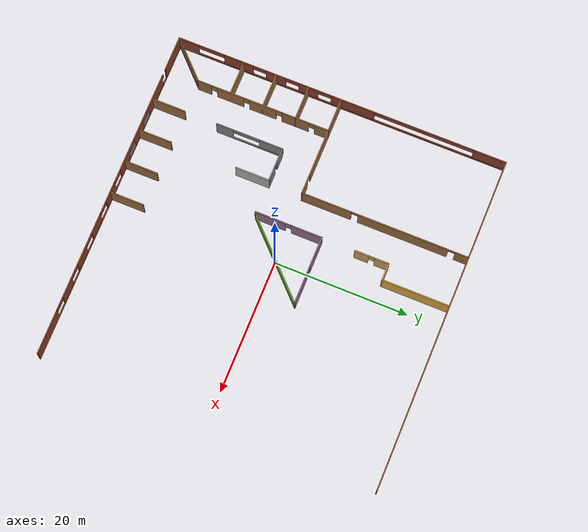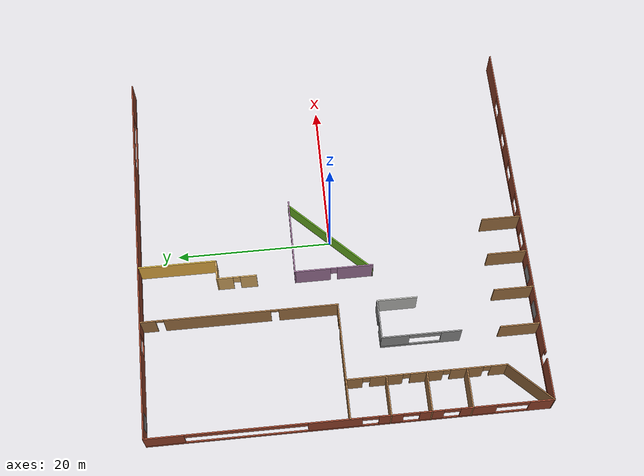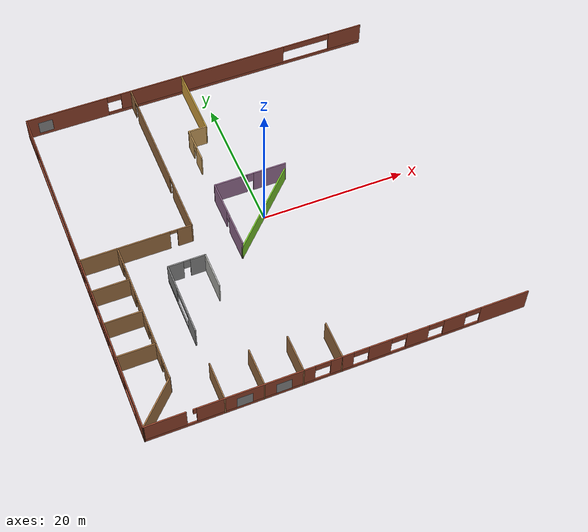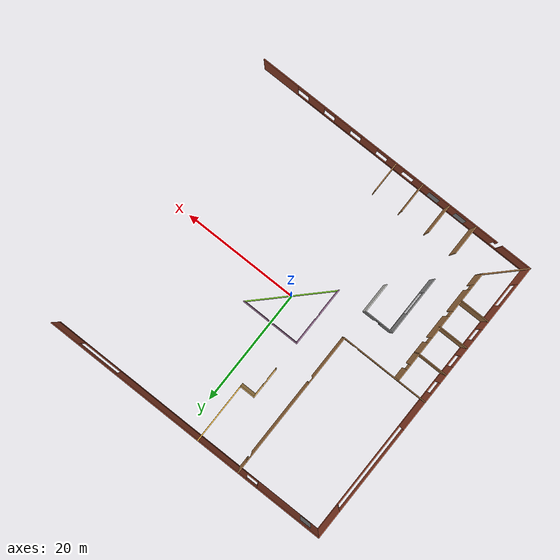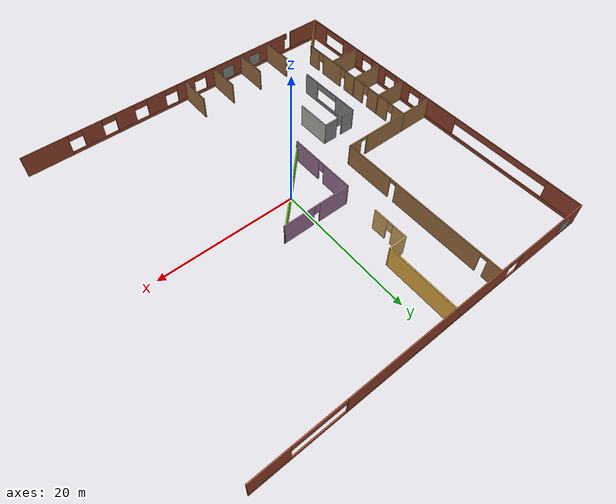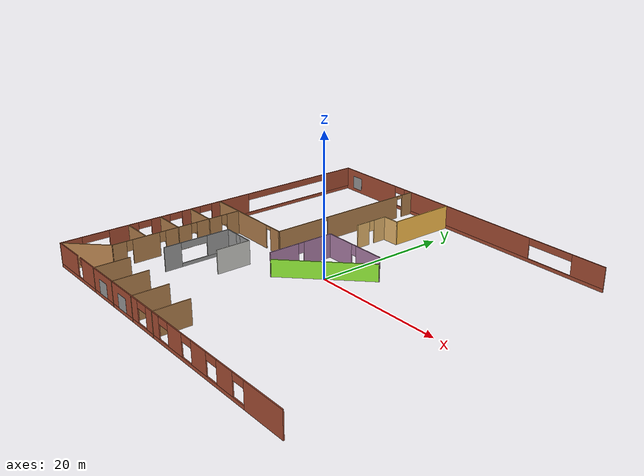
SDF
<sdf version="1.7">
 <model name="office__space">
  <pose>-0.015532 -0.015532 0 0 -0 0</pose>
  <link name="Wall_0">
   <pose>0.015532 25.0155 0 0 -0 0</pose>
   <visual name="Wall_0_Visual_0">
    <pose>-19.2875 0 1.75 0 -0 0</pose>
    <geometry><box><size>11.575 0.15 3.5</size></box></geometry>
    <material>
     <script><uri>file://media/materials/scripts/gazebo.material</uri><name>Gazebo/Bricks</name></script>
     <ambient>1 1 1 1</ambient>
    </material>
    <meta><layer>0</layer></meta>
   </visual>
   <collision name="Wall_0_Collision_0">
    <geometry><box><size>11.575 0.15 3.5</size></box></geometry>
    <pose>-19.2875 0 1.75 0 -0 0</pose>
   </collision>
   <visual name="Wall_0_Visual_1">
    <pose>5.7875 0 0.25 0 -0 0</pose>
    <geometry><box><size>38.575 0.15 0.5</size></box></geometry>
    <material>
     <script><uri>file://media/materials/scripts/gazebo.material</uri><name>Gazebo/Bricks</name></script>
     <ambient>1 1 1 1</ambient>
    </material>
    <meta><layer>0</layer></meta>
   </visual>
   <collision name="Wall_0_Collision_1">
    <geometry><box><size>38.575 0.15 0.5</size></box></geometry>
    <pose>5.7875 0 0.25 0 -0 0</pose>
   </collision>
   <visual name="Wall_0_Visual_2">
    <pose>0.75 0 2 0 -0 0</pose>
    <geometry><box><size>24.5 0.15 3</size></box></geometry>
    <material>
     <script><uri>file://media/materials/scripts/gazebo.material</uri><name>Gazebo/Bricks</name></script>
     <ambient>1 1 1 1</ambient>
    </material>
    <meta><layer>0</layer></meta>
   </visual>
   <collision name="Wall_0_Collision_2">
    <geometry><box><size>24.5 0.15 3</size></box></geometry>
    <pose>0.75 0 2 0 -0 0</pose>
   </collision>
   <visual name="Wall_0_Visual_3">
    <pose>22.5375 0 2 0 -0 0</pose>
    <geometry><box><size>5.075 0.15 3</size></box></geometry>
    <material>
     <script><uri>file://media/materials/scripts/gazebo.material</uri><name>Gazebo/Bricks</name></script>
     <ambient>1 1 1 1</ambient>
    </material>
    <meta><layer>0</layer></meta>
   </visual>
   <collision name="Wall_0_Collision_3">
    <geometry><box><size>5.075 0.15 3</size></box></geometry>
    <pose>22.5375 0 2 0 -0 0</pose>
   </collision>
   <visual name="Wall_0_Visual_4">
    <pose>-12.5 0 3 0 -0 0</pose>
    <geometry><box><size>2 0.15 1</size></box></geometry>
    <material>
     <script><uri>file://media/materials/scripts/gazebo.material</uri><name>Gazebo/Bricks</name></script>
     <ambient>1 1 1 1</ambient>
    </material>
    <meta><layer>0</layer></meta>
   </visual>
   <collision name="Wall_0_Collision_4">
    <geometry><box><size>2 0.15 1</size></box></geometry>
    <pose>-12.5 0 3 0 -0 0</pose>
   </collision>
   <visual name="Wall_0_Visual_5">
    <pose>16.5 0 3 0 -0 0</pose>
    <geometry><box><size>7 0.15 1</size></box></geometry>
    <material>
     <script><uri>file://media/materials/scripts/gazebo.material</uri><name>Gazebo/Bricks</name></script>
     <ambient>1 1 1 1</ambient>
    </material>
    <meta><layer>0</layer></meta>
   </visual>
   <collision name="Wall_0_Collision_5">
    <geometry><box><size>7 0.15 1</size></box></geometry>
    <pose>16.5 0 3 0 -0 0</pose>
   </collision>
  </link>
  <link name="Wall_12">
   <collision name="Wall_12_Collision">
    <geometry><box><size>5.15 0.15 3.5</size></box></geometry>
    <pose>0 0 1.75 0 -0 0</pose>
   </collision>
   <visual name="Wall_12_Visual">
    <pose>0 0 1.75 0 -0 0</pose>
    <geometry><box><size>5.15 0.15 3.5</size></box></geometry>
    <material>
     <script><uri>file://media/materials/scripts/gazebo.material</uri><name>Gazebo/Wood</name></script>
     <ambient>1 1 1 1</ambient>
    </material>
    <meta><layer>0</layer></meta>
   </visual>
   <pose>-22.4845 -4.98447 0 0 -0 0</pose>
  </link>
  <link name="Wall_14">
   <collision name="Wall_14_Collision">
    <geometry><box><size>5.15 0.15 3.5</size></box></geometry>
    <pose>0 0 1.75 0 -0 0</pose>
   </collision>
   <visual name="Wall_14_Visual">
    <pose>0 0 1.75 0 -0 0</pose>
    <geometry><box><size>5.15 0.15 3.5</size></box></geometry>
    <material>
     <script><uri>file://media/materials/scripts/gazebo.material</uri><name>Gazebo/Wood</name></script>
     <ambient>1 1 1 1</ambient>
    </material>
    <meta><layer>0</layer></meta>
   </visual>
   <pose>-22.4845 -9.98447 0 0 -0 0</pose>
  </link>
  <link name="Wall_16">
   <collision name="Wall_16_Collision">
    <geometry><box><size>5.15 0.15 3.5</size></box></geometry>
    <pose>0 0 1.75 0 -0 0</pose>
   </collision>
   <visual name="Wall_16_Visual">
    <pose>0 0 1.75 0 -0 0</pose>
    <geometry><box><size>5.15 0.15 3.5</size></box></geometry>
    <material>
     <script><uri>file://media/materials/scripts/gazebo.material</uri><name>Gazebo/Wood</name></script>
     <ambient>1 1 1 1</ambient>
    </material>
    <meta><layer>0</layer></meta>
   </visual>
   <pose>-22.4845 -14.9845 0 0 -0 0</pose>
  </link>
  <link name="Wall_19">
   <collision name="Wall_19_Collision">
    <geometry><box><size>7.22107 0.15 3.5</size></box></geometry>
    <pose>0 0 1.75 0 -0 0</pose>
   </collision>
   <visual name="Wall_19_Visual">
    <pose>0 0 1.75 0 -0 0</pose>
    <geometry><box><size>7.22107 0.15 3.5</size></box></geometry>
    <material>
     <script><uri>file://media/materials/scripts/gazebo.material</uri><name>Gazebo/Wood</name></script>
     <ambient>1 1 1 1</ambient>
    </material>
    <meta><layer>0</layer></meta>
   </visual>
   <pose>-22.4845 -22.4845 0 0 -0 -2.35619</pose>
  </link>
  <link name="Wall_2">
   <pose>0.015532 -24.9845 0 0 -0 3.14159</pose>
   <visual name="Wall_2_Visual_0">
    <pose>-21.7875 0 1.75 0 -0 0</pose>
    <geometry><box><size>6.575 0.15 3.5</size></box></geometry>
    <material>
     <script><uri>file://media/materials/scripts/gazebo.material</uri><name>Gazebo/Bricks</name></script>
     <ambient>1 1 1 1</ambient>
    </material>
    <meta><layer>0</layer></meta>
   </visual>
   <collision name="Wall_2_Collision_0">
    <geometry><box><size>6.575 0.15 3.5</size></box></geometry>
    <pose>-21.7875 0 1.75 0 -0 0</pose>
   </collision>
   <visual name="Wall_2_Visual_1">
    <pose>3.2875 0 0.25 0 -0 0</pose>
    <geometry><box><size>43.575 0.15 0.5</size></box></geometry>
    <material>
     <script><uri>file://media/materials/scripts/gazebo.material</uri><name>Gazebo/Bricks</name></script>
     <ambient>1 1 1 1</ambient>
    </material>
    <meta><layer>0</layer></meta>
   </visual>
   <collision name="Wall_2_Collision_1">
    <geometry><box><size>43.575 0.15 0.5</size></box></geometry>
    <pose>3.2875 0 0.25 0 -0 0</pose>
   </collision>
   <visual name="Wall_2_Visual_2">
    <pose>-15.0031 0 2 0 -0 0</pose>
    <geometry><box><size>2.99379 0.15 3</size></box></geometry>
    <material>
     <script><uri>file://media/materials/scripts/gazebo.material</uri><name>Gazebo/Bricks</name></script>
     <ambient>1 1 1 1</ambient>
    </material>
    <meta><layer>0</layer></meta>
   </visual>
   <collision name="Wall_2_Collision_2">
    <geometry><box><size>2.99379 0.15 3</size></box></geometry>
    <pose>-15.0031 0 2 0 -0 0</pose>
   </collision>
   <visual name="Wall_2_Visual_3">
    <pose>-10.0031 0 2 0 -0 0</pose>
    <geometry><box><size>3.00621 0.15 3</size></box></geometry>
    <material>
     <script><uri>file://media/materials/scripts/gazebo.material</uri><name>Gazebo/Bricks</name></script>
     <ambient>1 1 1 1</ambient>
    </material>
    <meta><layer>0</layer></meta>
   </visual>
   <collision name="Wall_2_Collision_3">
    <geometry><box><size>3.00621 0.15 3</size></box></geometry>
    <pose>-10.0031 0 2 0 -0 0</pose>
   </collision>
   <visual name="Wall_2_Visual_4">
    <pose>-5 0 2 0 -0 0</pose>
    <geometry><box><size>3 0.15 3</size></box></geometry>
    <material>
     <script><uri>file://media/materials/scripts/gazebo.material</uri><name>Gazebo/Bricks</name></script>
     <ambient>1 1 1 1</ambient>
    </material>
    <meta><layer>0</layer></meta>
   </visual>
   <collision name="Wall_2_Collision_4">
    <geometry><box><size>3 0.15 3</size></box></geometry>
    <pose>-5 0 2 0 -0 0</pose>
   </collision>
   <visual name="Wall_2_Visual_5">
    <pose>0 0 2 0 -0 0</pose>
    <geometry><box><size>3 0.15 3</size></box></geometry>
    <material>
     <script><uri>file://media/materials/scripts/gazebo.material</uri><name>Gazebo/Bricks</name></script>
     <ambient>1 1 1 1</ambient>
    </material>
    <meta><layer>0</layer></meta>
   </visual>
   <collision name="Wall_2_Collision_5">
    <geometry><box><size>3 0.15 3</size></box></geometry>
    <pose>0 0 2 0 -0 0</pose>
   </collision>
   <visual name="Wall_2_Visual_6">
    <pose>11 0 2 0 -0 0</pose>
    <geometry><box><size>15 0.15 3</size></box></geometry>
    <material>
     <script><uri>file://media/materials/scripts/gazebo.material</uri><name>Gazebo/Bricks</name></script>
     <ambient>1 1 1 1</ambient>
    </material>
    <meta><layer>0</layer></meta>
   </visual>
   <collision name="Wall_2_Collision_6">
    <geometry><box><size>15 0.15 3</size></box></geometry>
    <pose>11 0 2 0 -0 0</pose>
   </collision>
   <visual name="Wall_2_Visual_7">
    <pose>22.3969 0 2 0 -0 0</pose>
    <geometry><box><size>5.35618 0.15 3</size></box></geometry>
    <material>
     <script><uri>file://media/materials/scripts/gazebo.material</uri><name>Gazebo/Bricks</name></script>
     <ambient>1 1 1 1</ambient>
    </material>
    <meta><layer>0</layer></meta>
   </visual>
   <collision name="Wall_2_Collision_7">
    <geometry><box><size>5.35618 0.15 3</size></box></geometry>
    <pose>22.3969 0 2 0 -0 0</pose>
   </collision>
   <visual name="Wall_2_Visual_8">
    <pose>-17.5 0 3 0 -0 0</pose>
    <geometry><box><size>2 0.15 1</size></box></geometry>
    <material>
     <script><uri>file://media/materials/scripts/gazebo.material</uri><name>Gazebo/Bricks</name></script>
     <ambient>1 1 1 1</ambient>
    </material>
    <meta><layer>0</layer></meta>
   </visual>
   <collision name="Wall_2_Collision_8">
    <geometry><box><size>2 0.15 1</size></box></geometry>
    <pose>-17.5 0 3 0 -0 0</pose>
   </collision>
   <visual name="Wall_2_Visual_9">
    <pose>-12.5062 0 3 0 -0 0</pose>
    <geometry><box><size>2 0.15 1</size></box></geometry>
    <material>
     <script><uri>file://media/materials/scripts/gazebo.material</uri><name>Gazebo/Bricks</name></script>
     <ambient>1 1 1 1</ambient>
    </material>
    <meta><layer>0</layer></meta>
   </visual>
   <collision name="Wall_2_Collision_9">
    <geometry><box><size>2 0.15 1</size></box></geometry>
    <pose>-12.5062 0 3 0 -0 0</pose>
   </collision>
   <visual name="Wall_2_Visual_10">
    <pose>-7.5 0 3 0 -0 0</pose>
    <geometry><box><size>2 0.15 1</size></box></geometry>
    <material>
     <script><uri>file://media/materials/scripts/gazebo.material</uri><name>Gazebo/Bricks</name></script>
     <ambient>1 1 1 1</ambient>
    </material>
    <meta><layer>0</layer></meta>
   </visual>
   <collision name="Wall_2_Collision_10">
    <geometry><box><size>2 0.15 1</size></box></geometry>
    <pose>-7.5 0 3 0 -0 0</pose>
   </collision>
   <visual name="Wall_2_Visual_11">
    <pose>-2.5 0 3 0 -0 0</pose>
    <geometry><box><size>2 0.15 1</size></box></geometry>
    <material>
     <script><uri>file://media/materials/scripts/gazebo.material</uri><name>Gazebo/Bricks</name></script>
     <ambient>1 1 1 1</ambient>
    </material>
    <meta><layer>0</layer></meta>
   </visual>
   <collision name="Wall_2_Collision_11">
    <geometry><box><size>2 0.15 1</size></box></geometry>
    <pose>-2.5 0 3 0 -0 0</pose>
   </collision>
   <visual name="Wall_2_Visual_12">
    <pose>2.5 0 3 0 -0 0</pose>
    <geometry><box><size>2 0.15 1</size></box></geometry>
    <material>
     <script><uri>file://media/materials/scripts/gazebo.material</uri><name>Gazebo/Bricks</name></script>
     <ambient>1 1 1 1</ambient>
    </material>
    <meta><layer>0</layer></meta>
   </visual>
   <collision name="Wall_2_Collision_12">
    <geometry><box><size>2 0.15 1</size></box></geometry>
    <pose>2.5 0 3 0 -0 0</pose>
   </collision>
   <visual name="Wall_2_Visual_13">
    <pose>18.7094 0 3 0 -0 0</pose>
    <geometry><box><size>0.418823 0.15 1</size></box></geometry>
    <material>
     <script><uri>file://media/materials/scripts/gazebo.material</uri><name>Gazebo/Bricks</name></script>
     <ambient>1 1 1 1</ambient>
    </material>
    <meta><layer>0</layer></meta>
   </visual>
   <collision name="Wall_2_Collision_13">
    <geometry><box><size>0.418823 0.15 1</size></box></geometry>
    <pose>18.7094 0 3 0 -0 0</pose>
   </collision>
  </link>
  <link name="Wall_29">
   <collision name="Wall_29_Collision">
    <geometry><box><size>5.15 0.15 3.5</size></box></geometry>
    <pose>0 0 1.75 0 -0 0</pose>
   </collision>
   <visual name="Wall_29_Visual">
    <pose>0 0 1.75 0 -0 0</pose>
    <geometry><box><size>5.15 0.15 3.5</size></box></geometry>
    <material>
     <script><uri>file://media/materials/scripts/gazebo.material</uri><name>Gazebo/Wood</name></script>
     <ambient>1 1 1 1</ambient>
    </material>
    <meta><layer>0</layer></meta>
   </visual>
   <pose>0.015532 -22.4845 0 0 -0 1.5708</pose>
  </link>
  <link name="Wall_3">
   <pose>-24.9845 0.015532 0 0 -0 1.5708</pose>
   <visual name="Wall_3_Visual_0">
    <pose>-23.5375 0 1.75 0 -0 0</pose>
    <geometry><box><size>3.075 0.15 3.5</size></box></geometry>
    <material>
     <script><uri>file://media/materials/scripts/gazebo.material</uri><name>Gazebo/Bricks</name></script>
     <ambient>1 1 1 1</ambient>
    </material>
    <meta><layer>0</layer></meta>
   </visual>
   <collision name="Wall_3_Collision_0">
    <geometry><box><size>3.075 0.15 3.5</size></box></geometry>
    <pose>-23.5375 0 1.75 0 -0 0</pose>
   </collision>
   <visual name="Wall_3_Visual_1">
    <pose>1.5375 0 0.25 0 -0 0</pose>
    <geometry><box><size>47.075 0.15 0.5</size></box></geometry>
    <material>
     <script><uri>file://media/materials/scripts/gazebo.material</uri><name>Gazebo/Bricks</name></script>
     <ambient>1 1 1 1</ambient>
    </material>
    <meta><layer>0</layer></meta>
   </visual>
   <collision name="Wall_3_Collision_1">
    <geometry><box><size>47.075 0.15 0.5</size></box></geometry>
    <pose>1.5375 0 0.25 0 -0 0</pose>
   </collision>
   <visual name="Wall_3_Visual_2">
    <pose>-15.75 0 2 0 -0 0</pose>
    <geometry><box><size>4.5 0.15 3</size></box></geometry>
    <material>
     <script><uri>file://media/materials/scripts/gazebo.material</uri><name>Gazebo/Bricks</name></script>
     <ambient>1 1 1 1</ambient>
    </material>
    <meta><layer>0</layer></meta>
   </visual>
   <collision name="Wall_3_Collision_2">
    <geometry><box><size>4.5 0.15 3</size></box></geometry>
    <pose>-15.75 0 2 0 -0 0</pose>
   </collision>
   <visual name="Wall_3_Visual_3">
    <pose>-10 0 2 0 -0 0</pose>
    <geometry><box><size>3 0.15 3</size></box></geometry>
    <material>
     <script><uri>file://media/materials/scripts/gazebo.material</uri><name>Gazebo/Bricks</name></script>
     <ambient>1 1 1 1</ambient>
    </material>
    <meta><layer>0</layer></meta>
   </visual>
   <collision name="Wall_3_Collision_3">
    <geometry><box><size>3 0.15 3</size></box></geometry>
    <pose>-10 0 2 0 -0 0</pose>
   </collision>
   <visual name="Wall_3_Visual_4">
    <pose>-5 0 2 0 -0 0</pose>
    <geometry><box><size>3 0.15 3</size></box></geometry>
    <material>
     <script><uri>file://media/materials/scripts/gazebo.material</uri><name>Gazebo/Bricks</name></script>
     <ambient>1 1 1 1</ambient>
    </material>
    <meta><layer>0</layer></meta>
   </visual>
   <collision name="Wall_3_Collision_4">
    <geometry><box><size>3 0.15 3</size></box></geometry>
    <pose>-5 0 2 0 -0 0</pose>
   </collision>
   <visual name="Wall_3_Visual_5">
    <pose>1.81915 0 2 0 -0 0</pose>
    <geometry><box><size>6.63829 0.15 3</size></box></geometry>
    <material>
     <script><uri>file://media/materials/scripts/gazebo.material</uri><name>Gazebo/Bricks</name></script>
     <ambient>1 1 1 1</ambient>
    </material>
    <meta><layer>0</layer></meta>
   </visual>
   <collision name="Wall_3_Collision_5">
    <geometry><box><size>6.63829 0.15 3</size></box></geometry>
    <pose>1.81915 0 2 0 -0 0</pose>
   </collision>
   <visual name="Wall_3_Visual_6">
    <pose>22.6066 0 2 0 -0 0</pose>
    <geometry><box><size>4.93671 0.15 3</size></box></geometry>
    <material>
     <script><uri>file://media/materials/scripts/gazebo.material</uri><name>Gazebo/Bricks</name></script>
     <ambient>1 1 1 1</ambient>
    </material>
    <meta><layer>0</layer></meta>
   </visual>
   <collision name="Wall_3_Collision_6">
    <geometry><box><size>4.93671 0.15 3</size></box></geometry>
    <pose>22.6066 0 2 0 -0 0</pose>
   </collision>
   <visual name="Wall_3_Visual_7">
    <pose>-20 0 3 0 -0 0</pose>
    <geometry><box><size>4 0.15 1</size></box></geometry>
    <material>
     <script><uri>file://media/materials/scripts/gazebo.material</uri><name>Gazebo/Bricks</name></script>
     <ambient>1 1 1 1</ambient>
    </material>
    <meta><layer>0</layer></meta>
   </visual>
   <collision name="Wall_3_Collision_7">
    <geometry><box><size>4 0.15 1</size></box></geometry>
    <pose>-20 0 3 0 -0 0</pose>
   </collision>
   <visual name="Wall_3_Visual_8">
    <pose>-12.5 0 3 0 -0 0</pose>
    <geometry><box><size>2 0.15 1</size></box></geometry>
    <material>
     <script><uri>file://media/materials/scripts/gazebo.material</uri><name>Gazebo/Bricks</name></script>
     <ambient>1 1 1 1</ambient>
    </material>
    <meta><layer>0</layer></meta>
   </visual>
   <collision name="Wall_3_Collision_8">
    <geometry><box><size>2 0.15 1</size></box></geometry>
    <pose>-12.5 0 3 0 -0 0</pose>
   </collision>
   <visual name="Wall_3_Visual_9">
    <pose>-7.5 0 3 0 -0 0</pose>
    <geometry><box><size>2 0.15 1</size></box></geometry>
    <material>
     <script><uri>file://media/materials/scripts/gazebo.material</uri><name>Gazebo/Bricks</name></script>
     <ambient>1 1 1 1</ambient>
    </material>
    <meta><layer>0</layer></meta>
   </visual>
   <collision name="Wall_3_Collision_9">
    <geometry><box><size>2 0.15 1</size></box></geometry>
    <pose>-7.5 0 3 0 -0 0</pose>
   </collision>
   <visual name="Wall_3_Visual_10">
    <pose>-2.5 0 3 0 -0 0</pose>
    <geometry><box><size>2 0.15 1</size></box></geometry>
    <material>
     <script><uri>file://media/materials/scripts/gazebo.material</uri><name>Gazebo/Bricks</name></script>
     <ambient>1 1 1 1</ambient>
    </material>
    <meta><layer>0</layer></meta>
   </visual>
   <collision name="Wall_3_Collision_10">
    <geometry><box><size>2 0.15 1</size></box></geometry>
    <pose>-2.5 0 3 0 -0 0</pose>
   </collision>
   <visual name="Wall_3_Visual_11">
    <pose>12.6383 0 3 0 -0 0</pose>
    <geometry><box><size>15 0.15 1</size></box></geometry>
    <material>
     <script><uri>file://media/materials/scripts/gazebo.material</uri><name>Gazebo/Bricks</name></script>
     <ambient>1 1 1 1</ambient>
    </material>
    <meta><layer>0</layer></meta>
   </visual>
   <collision name="Wall_3_Collision_11">
    <geometry><box><size>15 0.15 1</size></box></geometry>
    <pose>12.6383 0 3 0 -0 0</pose>
   </collision>
  </link>
  <link name="Wall_31">
   <collision name="Wall_31_Collision">
    <geometry><box><size>5.15 0.15 3.5</size></box></geometry>
    <pose>0 0 1.75 0 -0 0</pose>
   </collision>
   <visual name="Wall_31_Visual">
    <pose>0 0 1.75 0 -0 0</pose>
    <geometry><box><size>5.15 0.15 3.5</size></box></geometry>
    <material>
     <script><uri>file://media/materials/scripts/gazebo.material</uri><name>Gazebo/Wood</name></script>
     <ambient>1 1 1 1</ambient>
    </material>
    <meta><layer>0</layer></meta>
   </visual>
   <pose>-4.98447 -22.4845 0 0 -0 1.5708</pose>
  </link>
  <link name="Wall_33">
   <collision name="Wall_33_Collision">
    <geometry><box><size>5.15 0.15 3.5</size></box></geometry>
    <pose>0 0 1.75 0 -0 0</pose>
   </collision>
   <visual name="Wall_33_Visual">
    <pose>0 0 1.75 0 -0 0</pose>
    <geometry><box><size>5.15 0.15 3.5</size></box></geometry>
    <material>
     <script><uri>file://media/materials/scripts/gazebo.material</uri><name>Gazebo/Wood</name></script>
     <ambient>1 1 1 1</ambient>
    </material>
    <meta><layer>0</layer></meta>
   </visual>
   <pose>-9.98447 -22.4845 0 0 -0 1.5708</pose>
  </link>
  <link name="Wall_35">
   <collision name="Wall_35_Collision">
    <geometry><box><size>5.15 0.15 3.5</size></box></geometry>
    <pose>0 0 1.75 0 -0 0</pose>
   </collision>
   <visual name="Wall_35_Visual">
    <pose>0 0 1.75 0 -0 0</pose>
    <geometry><box><size>5.15 0.15 3.5</size></box></geometry>
    <material>
     <script><uri>file://media/materials/scripts/gazebo.material</uri><name>Gazebo/Wood</name></script>
     <ambient>1 1 1 1</ambient>
    </material>
    <meta><layer>0</layer></meta>
   </visual>
   <pose>-14.9845 -22.4845 0 0 -0 -1.5708</pose>
  </link>
  <link name="Wall_37">
   <pose>0.015532 5.01553 0 0 -0 0</pose>
   <visual name="Wall_37_Visual_0">
    <pose>-2.7625 0 1.75 0 -0 0</pose>
    <geometry><box><size>4.625 0.15 3.5</size></box></geometry>
    <material>
     <script><uri>file://media/materials/scripts/gazebo.material</uri><name>Gazebo/Grey</name></script>
     <ambient>0.678431 0.498039 0.658824 1</ambient>
    </material>
    <meta><layer>0</layer></meta>
   </visual>
   <collision name="Wall_37_Collision_0">
    <geometry><box><size>4.625 0.15 3.5</size></box></geometry>
    <pose>-2.7625 0 1.75 0 -0 0</pose>
   </collision>
   <visual name="Wall_37_Visual_1">
    <pose>2.7625 0 1.75 0 -0 0</pose>
    <geometry><box><size>4.625 0.15 3.5</size></box></geometry>
    <material>
     <script><uri>file://media/materials/scripts/gazebo.material</uri><name>Gazebo/Grey</name></script>
     <ambient>0.678431 0.498039 0.658824 1</ambient>
    </material>
    <meta><layer>0</layer></meta>
   </visual>
   <collision name="Wall_37_Collision_1">
    <geometry><box><size>4.625 0.15 3.5</size></box></geometry>
    <pose>2.7625 0 1.75 0 -0 0</pose>
   </collision>
   <visual name="Wall_37_Visual_2">
    <pose>0 0 2.75 0 -0 0</pose>
    <geometry><box><size>0.9 0.15 1.5</size></box></geometry>
    <material>
     <script><uri>file://media/materials/scripts/gazebo.material</uri><name>Gazebo/Grey</name></script>
     <ambient>0.678431 0.498039 0.658824 1</ambient>
    </material>
    <meta><layer>0</layer></meta>
   </visual>
   <collision name="Wall_37_Collision_2">
    <geometry><box><size>0.9 0.15 1.5</size></box></geometry>
    <pose>0 0 2.75 0 -0 0</pose>
   </collision>
  </link>
  <link name="Wall_38">
   <collision name="Wall_38_Collision">
    <geometry><box><size>14.2921 0.15 2.5</size></box></geometry>
    <pose>0 0 1.25 0 -0 0</pose>
   </collision>
   <visual name="Wall_38_Visual">
    <pose>0 0 1.25 0 -0 0</pose>
    <geometry><box><size>14.2921 0.15 2.5</size></box></geometry>
    <material>
     <script><uri>file://media/materials/scripts/gazebo.material</uri><name>Gazebo/Grey</name></script>
     <ambient>0.541176 0.886275 0.203922 1</ambient>
    </material>
    <meta><layer>0</layer></meta>
   </visual>
   <pose>0.015532 0.015532 0 0 -0 -2.35619</pose>
  </link>
  <link name="Wall_41">
   <pose>-4.98447 0.015532 0 0 -0 -1.5708</pose>
   <visual name="Wall_41_Visual_0">
    <pose>-2.7625 0 1.75 0 -0 0</pose>
    <geometry><box><size>4.625 0.15 3.5</size></box></geometry>
    <material>
     <script><uri>file://media/materials/scripts/gazebo.material</uri><name>Gazebo/Grey</name></script>
     <ambient>0.678431 0.498039 0.658824 1</ambient>
    </material>
    <meta><layer>0</layer></meta>
   </visual>
   <collision name="Wall_41_Collision_0">
    <geometry><box><size>4.625 0.15 3.5</size></box></geometry>
    <pose>-2.7625 0 1.75 0 -0 0</pose>
   </collision>
   <visual name="Wall_41_Visual_1">
    <pose>2.7625 0 1.75 0 -0 0</pose>
    <geometry><box><size>4.625 0.15 3.5</size></box></geometry>
    <material>
     <script><uri>file://media/materials/scripts/gazebo.material</uri><name>Gazebo/Grey</name></script>
     <ambient>0.678431 0.498039 0.658824 1</ambient>
    </material>
    <meta><layer>0</layer></meta>
   </visual>
   <collision name="Wall_41_Collision_1">
    <geometry><box><size>4.625 0.15 3.5</size></box></geometry>
    <pose>2.7625 0 1.75 0 -0 0</pose>
   </collision>
   <visual name="Wall_41_Visual_2">
    <pose>0 0 2.75 0 -0 0</pose>
    <geometry><box><size>0.9 0.15 1.5</size></box></geometry>
    <material>
     <script><uri>file://media/materials/scripts/gazebo.material</uri><name>Gazebo/Grey</name></script>
     <ambient>0.678431 0.498039 0.658824 1</ambient>
    </material>
    <meta><layer>0</layer></meta>
   </visual>
   <collision name="Wall_41_Collision_2">
    <geometry><box><size>0.9 0.15 1.5</size></box></geometry>
    <pose>0 0 2.75 0 -0 0</pose>
   </collision>
  </link>
  <link name="Wall_45">
   <pose>-9.98447 12.5155 0 0 -0 -1.5708</pose>
   <visual name="Wall_45_Visual_0">
    <pose>-11.5375 0 1.75 0 -0 0</pose>
    <geometry><box><size>2.075 0.15 3.5</size></box></geometry>
    <material>
     <script><uri>file://media/materials/scripts/gazebo.material</uri><name>Gazebo/Wood</name></script>
     <ambient>1 1 1 1</ambient>
    </material>
    <meta><layer>0</layer></meta>
   </visual>
   <collision name="Wall_45_Collision_0">
    <geometry><box><size>2.075 0.15 3.5</size></box></geometry>
    <pose>-11.5375 0 1.75 0 -0 0</pose>
   </collision>
   <visual name="Wall_45_Visual_1">
    <pose>-2.75 0 1.75 0 -0 0</pose>
    <geometry><box><size>13.5 0.15 3.5</size></box></geometry>
    <material>
     <script><uri>file://media/materials/scripts/gazebo.material</uri><name>Gazebo/Wood</name></script>
     <ambient>1 1 1 1</ambient>
    </material>
    <meta><layer>0</layer></meta>
   </visual>
   <collision name="Wall_45_Collision_1">
    <geometry><box><size>13.5 0.15 3.5</size></box></geometry>
    <pose>-2.75 0 1.75 0 -0 0</pose>
   </collision>
   <visual name="Wall_45_Visual_2">
    <pose>8.7875 0 1.75 0 -0 0</pose>
    <geometry><box><size>7.575 0.15 3.5</size></box></geometry>
    <material>
     <script><uri>file://media/materials/scripts/gazebo.material</uri><name>Gazebo/Wood</name></script>
     <ambient>1 1 1 1</ambient>
    </material>
    <meta><layer>0</layer></meta>
   </visual>
   <collision name="Wall_45_Collision_2">
    <geometry><box><size>7.575 0.15 3.5</size></box></geometry>
    <pose>8.7875 0 1.75 0 -0 0</pose>
   </collision>
   <visual name="Wall_45_Visual_3">
    <pose>-10 0 3.25 0 -0 0</pose>
    <geometry><box><size>1 0.15 0.5</size></box></geometry>
    <material>
     <script><uri>file://media/materials/scripts/gazebo.material</uri><name>Gazebo/Wood</name></script>
     <ambient>1 1 1 1</ambient>
    </material>
    <meta><layer>0</layer></meta>
   </visual>
   <collision name="Wall_45_Collision_3">
    <geometry><box><size>1 0.15 0.5</size></box></geometry>
    <pose>-10 0 3.25 0 -0 0</pose>
   </collision>
   <visual name="Wall_45_Visual_4">
    <pose>4.5 0 3.25 0 -0 0</pose>
    <geometry><box><size>1 0.15 0.5</size></box></geometry>
    <material>
     <script><uri>file://media/materials/scripts/gazebo.material</uri><name>Gazebo/Wood</name></script>
     <ambient>1 1 1 1</ambient>
    </material>
    <meta><layer>0</layer></meta>
   </visual>
   <collision name="Wall_45_Collision_4">
    <geometry><box><size>1 0.15 0.5</size></box></geometry>
    <pose>4.5 0 3.25 0 -0 0</pose>
   </collision>
  </link>
  <link name="Wall_46">
   <pose>-14.9845 0.015532 0 0 -0 3.14159</pose>
   <visual name="Wall_46_Visual_0">
    <pose>-4.0375 0 1.75 0 -0 0</pose>
    <geometry><box><size>2.075 0.15 3.5</size></box></geometry>
    <material>
     <script><uri>file://media/materials/scripts/gazebo.material</uri><name>Gazebo/Wood</name></script>
     <ambient>1 1 1 1</ambient>
    </material>
    <meta><layer>0</layer></meta>
   </visual>
   <collision name="Wall_46_Collision_0">
    <geometry><box><size>2.075 0.15 3.5</size></box></geometry>
    <pose>-4.0375 0 1.75 0 -0 0</pose>
   </collision>
   <visual name="Wall_46_Visual_1">
    <pose>1.5375 0 1.75 0 -0 0</pose>
    <geometry><box><size>7.075 0.15 3.5</size></box></geometry>
    <material>
     <script><uri>file://media/materials/scripts/gazebo.material</uri><name>Gazebo/Wood</name></script>
     <ambient>1 1 1 1</ambient>
    </material>
    <meta><layer>0</layer></meta>
   </visual>
   <collision name="Wall_46_Collision_1">
    <geometry><box><size>7.075 0.15 3.5</size></box></geometry>
    <pose>1.5375 0 1.75 0 -0 0</pose>
   </collision>
   <visual name="Wall_46_Visual_2">
    <pose>-2.5 0 3.25 0 -0 0</pose>
    <geometry><box><size>1 0.15 0.5</size></box></geometry>
    <material>
     <script><uri>file://media/materials/scripts/gazebo.material</uri><name>Gazebo/Wood</name></script>
     <ambient>1 1 1 1</ambient>
    </material>
    <meta><layer>0</layer></meta>
   </visual>
   <collision name="Wall_46_Collision_2">
    <geometry><box><size>1 0.15 0.5</size></box></geometry>
    <pose>-2.5 0 3.25 0 -0 0</pose>
   </collision>
  </link>
  <link name="Wall_60">
   <pose>-12.4845 -4.98447 0 0 -0 0</pose>
   <visual name="Wall_60_Visual_0">
    <pose>-1.5125 0 1.75 0 -0 0</pose>
    <geometry><box><size>2.125 0.15 3.5</size></box></geometry>
    <material>
     <script><uri>file://media/materials/scripts/gazebo.material</uri><name>Gazebo/Grey</name></script>
     <ambient>1 1 1 1</ambient>
    </material>
    <meta><layer>0</layer></meta>
   </visual>
   <collision name="Wall_60_Collision_0">
    <geometry><box><size>2.125 0.15 3.5</size></box></geometry>
    <pose>-1.5125 0 1.75 0 -0 0</pose>
   </collision>
   <visual name="Wall_60_Visual_1">
    <pose>1.5125 0 1.75 0 -0 0</pose>
    <geometry><box><size>2.125 0.15 3.5</size></box></geometry>
    <material>
     <script><uri>file://media/materials/scripts/gazebo.material</uri><name>Gazebo/Grey</name></script>
     <ambient>1 1 1 1</ambient>
    </material>
    <meta><layer>0</layer></meta>
   </visual>
   <collision name="Wall_60_Collision_1">
    <geometry><box><size>2.125 0.15 3.5</size></box></geometry>
    <pose>1.5125 0 1.75 0 -0 0</pose>
   </collision>
   <visual name="Wall_60_Visual_2">
    <pose>-0 0 2.75 0 -0 0</pose>
    <geometry><box><size>0.9 0.15 1.5</size></box></geometry>
    <material>
     <script><uri>file://media/materials/scripts/gazebo.material</uri><name>Gazebo/Grey</name></script>
     <ambient>1 1 1 1</ambient>
    </material>
    <meta><layer>0</layer></meta>
   </visual>
   <collision name="Wall_60_Collision_2">
    <geometry><box><size>0.9 0.15 1.5</size></box></geometry>
    <pose>-0 0 2.75 0 -0 0</pose>
   </collision>
  </link>
  <link name="Wall_61">
   <collision name="Wall_61_Collision">
    <geometry><box><size>5.15 0.15 3.5</size></box></geometry>
    <pose>0 0 1.75 0 -0 0</pose>
   </collision>
   <visual name="Wall_61_Visual">
    <pose>0 0 1.75 0 -0 0</pose>
    <geometry><box><size>5.15 0.15 3.5</size></box></geometry>
    <material>
     <script><uri>file://media/materials/scripts/gazebo.material</uri><name>Gazebo/CeilingTiled</name></script>
     <ambient>1 1 1 1</ambient>
    </material>
    <meta><layer>0</layer></meta>
   </visual>
   <pose>-9.98447 -7.48447 0 0 -0 -1.5708</pose>
  </link>
  <link name="Wall_67">
   <pose>-14.9845 -9.98447 0 0 -0 1.5708</pose>
   <visual name="Wall_67_Visual_0">
    <pose>-3.7875 0 1.75 0 -0 0</pose>
    <geometry><box><size>2.575 0.15 3.5</size></box></geometry>
    <material>
     <script><uri>file://media/materials/scripts/gazebo.material</uri><name>Gazebo/Grey</name></script>
     <ambient>1 1 1 1</ambient>
    </material>
    <meta><layer>0</layer></meta>
   </visual>
   <collision name="Wall_67_Collision_0">
    <geometry><box><size>2.575 0.15 3.5</size></box></geometry>
    <pose>-3.7875 0 1.75 0 -0 0</pose>
   </collision>
   <visual name="Wall_67_Visual_1">
    <pose>1.2875 0 0.25 0 -0 0</pose>
    <geometry><box><size>7.575 0.15 0.5</size></box></geometry>
    <material>
     <script><uri>file://media/materials/scripts/gazebo.material</uri><name>Gazebo/Grey</name></script>
     <ambient>1 1 1 1</ambient>
    </material>
    <meta><layer>0</layer></meta>
   </visual>
   <collision name="Wall_67_Collision_1">
    <geometry><box><size>7.575 0.15 0.5</size></box></geometry>
    <pose>1.2875 0 0.25 0 -0 0</pose>
   </collision>
   <visual name="Wall_67_Visual_2">
    <pose>3.2875 0 2 0 -0 0</pose>
    <geometry><box><size>3.575 0.15 3</size></box></geometry>
    <material>
     <script><uri>file://media/materials/scripts/gazebo.material</uri><name>Gazebo/Grey</name></script>
     <ambient>1 1 1 1</ambient>
    </material>
    <meta><layer>0</layer></meta>
   </visual>
   <collision name="Wall_67_Collision_2">
    <geometry><box><size>3.575 0.15 3</size></box></geometry>
    <pose>3.2875 0 2 0 -0 0</pose>
   </collision>
   <visual name="Wall_67_Visual_3">
    <pose>-0.5 0 3 0 -0 0</pose>
    <geometry><box><size>4 0.15 1</size></box></geometry>
    <material>
     <script><uri>file://media/materials/scripts/gazebo.material</uri><name>Gazebo/Grey</name></script>
     <ambient>1 1 1 1</ambient>
    </material>
    <meta><layer>0</layer></meta>
   </visual>
   <collision name="Wall_67_Collision_3">
    <geometry><box><size>4 0.15 1</size></box></geometry>
    <pose>-0.5 0 3 0 -0 0</pose>
   </collision>
  </link>
  <link name="Wall_69">
   <collision name="Wall_69_Collision">
    <geometry><box><size>10.15 0.15 3.5</size></box></geometry>
    <pose>0 0 1.75 0 -0 0</pose>
   </collision>
   <visual name="Wall_69_Visual">
    <pose>0 0 1.75 0 -0 0</pose>
    <geometry><box><size>10.15 0.15 3.5</size></box></geometry>
    <material>
     <script><uri>file://media/materials/scripts/gazebo.material</uri><name>Gazebo/Grey</name></script>
     <ambient>1 0.764706 0.305882 1</ambient>
    </material>
    <meta><layer>0</layer></meta>
   </visual>
   <pose>-2.48447 20.0155 0 0 -0 -1.5708</pose>
  </link>
  <link name="Wall_7">
   <pose>-19.9845 -9.98447 0 0 -0 1.5708</pose>
   <visual name="Wall_7_Visual_0">
    <pose>-9.0125 0 1.75 0 -0 0</pose>
    <geometry><box><size>2.125 0.15 3.5</size></box></geometry>
    <material>
     <script><uri>file://media/materials/scripts/gazebo.material</uri><name>Gazebo/Wood</name></script>
     <ambient>1 1 1 1</ambient>
    </material>
    <meta><layer>0</layer></meta>
   </visual>
   <collision name="Wall_7_Collision_0">
    <geometry><box><size>2.125 0.15 3.5</size></box></geometry>
    <pose>-9.0125 0 1.75 0 -0 0</pose>
   </collision>
   <visual name="Wall_7_Visual_1">
    <pose>-5 0 1.75 0 -0 0</pose>
    <geometry><box><size>4.1 0.15 3.5</size></box></geometry>
    <material>
     <script><uri>file://media/materials/scripts/gazebo.material</uri><name>Gazebo/Wood</name></script>
     <ambient>1 1 1 1</ambient>
    </material>
    <meta><layer>0</layer></meta>
   </visual>
   <collision name="Wall_7_Collision_1">
    <geometry><box><size>4.1 0.15 3.5</size></box></geometry>
    <pose>-5 0 1.75 0 -0 0</pose>
   </collision>
   <visual name="Wall_7_Visual_2">
    <pose>0 0 1.75 0 -0 0</pose>
    <geometry><box><size>4.1 0.15 3.5</size></box></geometry>
    <material>
     <script><uri>file://media/materials/scripts/gazebo.material</uri><name>Gazebo/Wood</name></script>
     <ambient>1 1 1 1</ambient>
    </material>
    <meta><layer>0</layer></meta>
   </visual>
   <collision name="Wall_7_Collision_2">
    <geometry><box><size>4.1 0.15 3.5</size></box></geometry>
    <pose>0 0 1.75 0 -0 0</pose>
   </collision>
   <visual name="Wall_7_Visual_3">
    <pose>5 0 1.75 0 -0 0</pose>
    <geometry><box><size>4.1 0.15 3.5</size></box></geometry>
    <material>
     <script><uri>file://media/materials/scripts/gazebo.material</uri><name>Gazebo/Wood</name></script>
     <ambient>1 1 1 1</ambient>
    </material>
    <meta><layer>0</layer></meta>
   </visual>
   <collision name="Wall_7_Collision_3">
    <geometry><box><size>4.1 0.15 3.5</size></box></geometry>
    <pose>5 0 1.75 0 -0 0</pose>
   </collision>
   <visual name="Wall_7_Visual_4">
    <pose>9.0125 0 1.75 0 -0 0</pose>
    <geometry><box><size>2.125 0.15 3.5</size></box></geometry>
    <material>
     <script><uri>file://media/materials/scripts/gazebo.material</uri><name>Gazebo/Wood</name></script>
     <ambient>1 1 1 1</ambient>
    </material>
    <meta><layer>0</layer></meta>
   </visual>
   <collision name="Wall_7_Collision_4">
    <geometry><box><size>2.125 0.15 3.5</size></box></geometry>
    <pose>9.0125 0 1.75 0 -0 0</pose>
   </collision>
   <visual name="Wall_7_Visual_5">
    <pose>-7.5 0 2.75 0 -0 0</pose>
    <geometry><box><size>0.9 0.15 1.5</size></box></geometry>
    <material>
     <script><uri>file://media/materials/scripts/gazebo.material</uri><name>Gazebo/Wood</name></script>
     <ambient>1 1 1 1</ambient>
    </material>
    <meta><layer>0</layer></meta>
   </visual>
   <collision name="Wall_7_Collision_5">
    <geometry><box><size>0.9 0.15 1.5</size></box></geometry>
    <pose>-7.5 0 2.75 0 -0 0</pose>
   </collision>
   <visual name="Wall_7_Visual_6">
    <pose>-2.5 0 2.75 0 -0 0</pose>
    <geometry><box><size>0.9 0.15 1.5</size></box></geometry>
    <material>
     <script><uri>file://media/materials/scripts/gazebo.material</uri><name>Gazebo/Wood</name></script>
     <ambient>1 1 1 1</ambient>
    </material>
    <meta><layer>0</layer></meta>
   </visual>
   <collision name="Wall_7_Collision_6">
    <geometry><box><size>0.9 0.15 1.5</size></box></geometry>
    <pose>-2.5 0 2.75 0 -0 0</pose>
   </collision>
   <visual name="Wall_7_Visual_7">
    <pose>2.5 0 2.75 0 -0 0</pose>
    <geometry><box><size>0.9 0.15 1.5</size></box></geometry>
    <material>
     <script><uri>file://media/materials/scripts/gazebo.material</uri><name>Gazebo/Wood</name></script>
     <ambient>1 1 1 1</ambient>
    </material>
    <meta><layer>0</layer></meta>
   </visual>
   <collision name="Wall_7_Collision_7">
    <geometry><box><size>0.9 0.15 1.5</size></box></geometry>
    <pose>2.5 0 2.75 0 -0 0</pose>
   </collision>
   <visual name="Wall_7_Visual_8">
    <pose>7.5 0 2.75 0 -0 0</pose>
    <geometry><box><size>0.9 0.15 1.5</size></box></geometry>
    <material>
     <script><uri>file://media/materials/scripts/gazebo.material</uri><name>Gazebo/Wood</name></script>
     <ambient>1 1 1 1</ambient>
    </material>
    <meta><layer>0</layer></meta>
   </visual>
   <collision name="Wall_7_Collision_8">
    <geometry><box><size>0.9 0.15 1.5</size></box></geometry>
    <pose>7.5 0 2.75 0 -0 0</pose>
   </collision>
  </link>
  <link name="Wall_70">
   <collision name="Wall_70_Collision">
    <geometry><box><size>2.65 0.15 3.5</size></box></geometry>
    <pose>0 0 1.75 0 -0 0</pose>
   </collision>
   <visual name="Wall_70_Visual">
    <pose>0 0 1.75 0 -0 0</pose>
    <geometry><box><size>2.65 0.15 3.5</size></box></geometry>
    <material>
     <script><uri>file://media/materials/scripts/gazebo.material</uri><name>Gazebo/Grey</name></script>
     <ambient>0.913725 0.72549 0.431373 1</ambient>
    </material>
    <meta><layer>0</layer></meta>
   </visual>
   <pose>-3.73447 15.0155 0 0 -0 3.14159</pose>
  </link>
  <link name="Wall_71">
   <pose>-4.98447 12.5155 0 0 -0 -1.5708</pose>
   <visual name="Wall_71_Visual_0">
    <pose>-1.5125 0 1.75 0 -0 0</pose>
    <geometry><box><size>2.125 0.15 3.5</size></box></geometry>
    <material>
     <script><uri>file://media/materials/scripts/gazebo.material</uri><name>Gazebo/Grey</name></script>
     <ambient>0.913725 0.72549 0.431373 1</ambient>
    </material>
    <meta><layer>0</layer></meta>
   </visual>
   <collision name="Wall_71_Collision_0">
    <geometry><box><size>2.125 0.15 3.5</size></box></geometry>
    <pose>-1.5125 0 1.75 0 -0 0</pose>
   </collision>
   <visual name="Wall_71_Visual_1">
    <pose>1.5125 0 1.75 0 -0 0</pose>
    <geometry><box><size>2.125 0.15 3.5</size></box></geometry>
    <material>
     <script><uri>file://media/materials/scripts/gazebo.material</uri><name>Gazebo/Grey</name></script>
     <ambient>0.913725 0.72549 0.431373 1</ambient>
    </material>
    <meta><layer>0</layer></meta>
   </visual>
   <collision name="Wall_71_Collision_1">
    <geometry><box><size>2.125 0.15 3.5</size></box></geometry>
    <pose>1.5125 0 1.75 0 -0 0</pose>
   </collision>
   <visual name="Wall_71_Visual_2">
    <pose>-0 0 2.75 0 -0 0</pose>
    <geometry><box><size>0.9 0.15 1.5</size></box></geometry>
    <material>
     <script><uri>file://media/materials/scripts/gazebo.material</uri><name>Gazebo/Grey</name></script>
     <ambient>0.913725 0.72549 0.431373 1</ambient>
    </material>
    <meta><layer>0</layer></meta>
   </visual>
   <collision name="Wall_71_Collision_2">
    <geometry><box><size>0.9 0.15 1.5</size></box></geometry>
    <pose>-0 0 2.75 0 -0 0</pose>
   </collision>
  </link>
  <link name="Wall_8">
   <collision name="Wall_8_Collision">
    <geometry><box><size>5.15 0.15 3.5</size></box></geometry>
    <pose>0 0 1.75 0 -0 0</pose>
   </collision>
   <visual name="Wall_8_Visual">
    <pose>0 0 1.75 0 -0 0</pose>
    <geometry><box><size>5.15 0.15 3.5</size></box></geometry>
    <material>
     <script><uri>file://media/materials/scripts/gazebo.material</uri><name>Gazebo/Wood</name></script>
     <ambient>1 1 1 1</ambient>
    </material>
    <meta><layer>0</layer></meta>
   </visual>
   <pose>-22.4845 0.015532 0 0 -0 3.14159</pose>
  </link>
  <link name="Window_0">
   <collision name="Window_0_Collision">
    <geometry><box><size>2 0.17 2</size></box></geometry>
    <pose>0 0 1 0 -0 0</pose>
   </collision>
   <visual name="Window_0_Visual">
    <pose>0 0 1 0 -0 0</pose>
    <geometry><box><size>2 0.17 2</size></box></geometry>
    <material>
     <script><uri>file://media/materials/scripts/gazebo.material</uri><name>Gazebo/Grey</name></script>
    </material>
   </visual>
   <pose>-22.4845 25.0155 0.5 0 -0 0</pose>
  </link>
  <link name="Window_10">
   <collision name="Window_10_Collision">
    <geometry><box><size>2 0.17 2</size></box></geometry>
    <pose>0 0 1 0 -0 0</pose>
   </collision>
   <visual name="Window_10_Visual">
    <pose>0 0 1 0 -0 0</pose>
    <geometry><box><size>2 0.17 2</size></box></geometry>
    <material>
     <script><uri>file://media/materials/scripts/gazebo.material</uri><name>Gazebo/Grey</name></script>
    </material>
   </visual>
   <pose>-12.4845 -24.9845 0.5 0 -0 0</pose>
  </link>
  <link name="Window_11">
   <collision name="Window_11_Collision">
    <geometry><box><size>2 0.17 2</size></box></geometry>
    <pose>0 0 1 0 -0 0</pose>
   </collision>
   <visual name="Window_11_Visual">
    <pose>0 0 1 0 -0 0</pose>
    <geometry><box><size>2 0.17 2</size></box></geometry>
    <material>
     <script><uri>file://media/materials/scripts/gazebo.material</uri><name>Gazebo/Grey</name></script>
    </material>
   </visual>
   <pose>-7.48447 -24.9845 0.5 0 -0 0</pose>
  </link>
  <static>1</static>
 </model>
</sdf>
